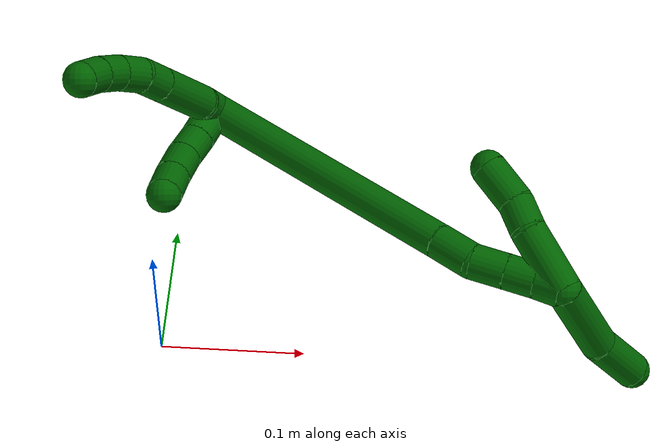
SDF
<sdf version="1.7">
 <world name="default">
  <model name="6">
   <static>0</static>
   <link name="6">
    <collision name="collision-cylinder-e_1_2_8">
     <pose>-0.004646 -0.009164 0.002449 1.3097 -0.455456 -0.352225</pose>
     <geometry><cylinder><radius>0.0125</radius><length>0.021125</length></cylinder></geometry>
     <surface>
      <friction><ode><mu>1.16</mu><mu2>1.16</mu2><slip1>0</slip1><slip2>0</slip2></ode></friction>
      <contact><ode><kp>1e+06</kp><kd>1</kd><max_vel>0</max_vel><min_depth>0.001</min_depth></ode></contact>
     </surface>
    </collision>
    <visual name="visual-cylinder-e_1_2_8">
     <pose>-0.004646 -0.009164 0.002449 1.3097 -0.455456 -0.352225</pose>
     <geometry><cylinder><radius>0.0125</radius><length>0.021125</length></cylinder></geometry>
     <material><ambient>0 0.392157 0.003922 1</ambient></material>
    </visual>
    <collision name="collision-cylinder-e_2_8_9">
     <pose>-0.024423 -0.035282 0.011317 1.20882 -0.695492 -0.490594</pose>
     <geometry><cylinder><radius>0.0125</radius><length>0.047227</length></cylinder></geometry>
     <surface>
      <friction><ode><mu>1.16</mu><mu2>1.16</mu2><slip1>0</slip1><slip2>0</slip2></ode></friction>
      <contact><ode><kp>1e+06</kp><kd>1</kd><max_vel>0</max_vel><min_depth>0.001</min_depth></ode></contact>
     </surface>
    </collision>
    <visual name="visual-cylinder-e_2_8_9">
     <pose>-0.024423 -0.035282 0.011317 1.20882 -0.695492 -0.490594</pose>
     <geometry><cylinder><radius>0.0125</radius><length>0.047227</length></cylinder></geometry>
     <material><ambient>0 0.392157 0.003922 1</ambient></material>
    </visual>
    <collision name="collision-cylinder-e_3_9_10">
     <pose>-0.046122 -0.059658 0.020514 1.21275 -0.692141 -0.490103</pose>
     <geometry><cylinder><radius>0.0125</radius><length>0.020586</length></cylinder></geometry>
     <surface>
      <friction><ode><mu>1.16</mu><mu2>1.16</mu2><slip1>0</slip1><slip2>0</slip2></ode></friction>
      <contact><ode><kp>1e+06</kp><kd>1</kd><max_vel>0</max_vel><min_depth>0.001</min_depth></ode></contact>
     </surface>
    </collision>
    <visual name="visual-cylinder-e_3_9_10">
     <pose>-0.046122 -0.059658 0.020514 1.21275 -0.692141 -0.490103</pose>
     <geometry><cylinder><radius>0.0125</radius><length>0.020586</length></cylinder></geometry>
     <material><ambient>0 0.392157 0.003922 1</ambient></material>
    </visual>
    <collision name="collision-cylinder-e_4_10_11">
     <pose>-0.060616 -0.073522 0.023936 1.47105 -0.88582 -0.810912</pose>
     <geometry><cylinder><radius>0.0125</radius><length>0.020468</length></cylinder></geometry>
     <surface>
      <friction><ode><mu>1.16</mu><mu2>1.16</mu2><slip1>0</slip1><slip2>0</slip2></ode></friction>
      <contact><ode><kp>1e+06</kp><kd>1</kd><max_vel>0</max_vel><min_depth>0.001</min_depth></ode></contact>
     </surface>
    </collision>
    <visual name="visual-cylinder-e_4_10_11">
     <pose>-0.060616 -0.073522 0.023936 1.47105 -0.88582 -0.810912</pose>
     <geometry><cylinder><radius>0.0125</radius><length>0.020468</length></cylinder></geometry>
     <material><ambient>0 0.392157 0.003922 1</ambient></material>
    </visual>
    <collision name="collision-cylinder-e_5_11_12">
     <pose>-0.075186 -0.087513 0.023832 1.66962 -0.719374 -0.787038</pose>
     <geometry><cylinder><radius>0.0125</radius><length>0.020167</length></cylinder></geometry>
     <surface>
      <friction><ode><mu>1.16</mu><mu2>1.16</mu2><slip1>0</slip1><slip2>0</slip2></ode></friction>
      <contact><ode><kp>1e+06</kp><kd>1</kd><max_vel>0</max_vel><min_depth>0.001</min_depth></ode></contact>
     </surface>
    </collision>
    <visual name="visual-cylinder-e_5_11_12">
     <pose>-0.075186 -0.087513 0.023832 1.66962 -0.719374 -0.787038</pose>
     <geometry><cylinder><radius>0.0125</radius><length>0.020167</length></cylinder></geometry>
     <material><ambient>0 0.392157 0.003922 1</ambient></material>
    </visual>
    <collision name="collision-cylinder-e_6_12_6">
     <pose>-0.087427 -0.103383 0.021151 1.79899 -0.579979 -0.718668</pose>
     <geometry><cylinder><radius>0.0125</radius><length>0.020428</length></cylinder></geometry>
     <surface>
      <friction><ode><mu>1.16</mu><mu2>1.16</mu2><slip1>0</slip1><slip2>0</slip2></ode></friction>
      <contact><ode><kp>1e+06</kp><kd>1</kd><max_vel>0</max_vel><min_depth>0.001</min_depth></ode></contact>
     </surface>
    </collision>
    <visual name="visual-cylinder-e_6_12_6">
     <pose>-0.087427 -0.103383 0.021151 1.79899 -0.579979 -0.718668</pose>
     <geometry><cylinder><radius>0.0125</radius><length>0.020428</length></cylinder></geometry>
     <material><ambient>0 0.392157 0.003922 1</ambient></material>
    </visual>
    <collision name="collision-cylinder-e_1_2_13">
     <pose>-0.006688 -0.007881 -0.00986 2.46728 -0.487276 -1.23365</pose>
     <geometry><cylinder><radius>0.0125</radius><length>0.028569</length></cylinder></geometry>
     <surface>
      <friction><ode><mu>1.16</mu><mu2>1.16</mu2><slip1>0</slip1><slip2>0</slip2></ode></friction>
      <contact><ode><kp>1e+06</kp><kd>1</kd><max_vel>0</max_vel><min_depth>0.001</min_depth></ode></contact>
     </surface>
    </collision>
    <visual name="visual-cylinder-e_1_2_13">
     <pose>-0.006688 -0.007881 -0.00986 2.46728 -0.487276 -1.23365</pose>
     <geometry><cylinder><radius>0.0125</radius><length>0.028569</length></cylinder></geometry>
     <material><ambient>0 0.392157 0.003922 1</ambient></material>
    </visual>
    <collision name="collision-cylinder-e_2_13_14">
     <pose>-0.018489 -0.021501 -0.026165 2.41411 -0.534746 -1.2475</pose>
     <geometry><cylinder><radius>0.0125</radius><length>0.020061</length></cylinder></geometry>
     <surface>
      <friction><ode><mu>1.16</mu><mu2>1.16</mu2><slip1>0</slip1><slip2>0</slip2></ode></friction>
      <contact><ode><kp>1e+06</kp><kd>1</kd><max_vel>0</max_vel><min_depth>0.001</min_depth></ode></contact>
     </surface>
    </collision>
    <visual name="visual-cylinder-e_2_13_14">
     <pose>-0.018489 -0.021501 -0.026165 2.41411 -0.534746 -1.2475</pose>
     <geometry><cylinder><radius>0.0125</radius><length>0.020061</length></cylinder></geometry>
     <material><ambient>0 0.392157 0.003922 1</ambient></material>
    </visual>
    <collision name="collision-cylinder-e_3_14_15">
     <pose>-0.02794 -0.037752 -0.039515 2.15192 -0.332236 -0.602501</pose>
     <geometry><cylinder><radius>0.0125</radius><length>0.026609</length></cylinder></geometry>
     <surface>
      <friction><ode><mu>1.16</mu><mu2>1.16</mu2><slip1>0</slip1><slip2>0</slip2></ode></friction>
      <contact><ode><kp>1e+06</kp><kd>1</kd><max_vel>0</max_vel><min_depth>0.001</min_depth></ode></contact>
     </surface>
    </collision>
    <visual name="visual-cylinder-e_3_14_15">
     <pose>-0.02794 -0.037752 -0.039515 2.15192 -0.332236 -0.602501</pose>
     <geometry><cylinder><radius>0.0125</radius><length>0.026609</length></cylinder></geometry>
     <material><ambient>0 0.392157 0.003922 1</ambient></material>
    </visual>
    <collision name="collision-cylinder-e_4_15_5">
     <pose>-0.035434 -0.058479 -0.052663 2.11951 -0.257633 -0.454056</pose>
     <geometry><cylinder><radius>0.0125</radius><length>0.02476</length></cylinder></geometry>
     <surface>
      <friction><ode><mu>1.16</mu><mu2>1.16</mu2><slip1>0</slip1><slip2>0</slip2></ode></friction>
      <contact><ode><kp>1e+06</kp><kd>1</kd><max_vel>0</max_vel><min_depth>0.001</min_depth></ode></contact>
     </surface>
    </collision>
    <visual name="visual-cylinder-e_4_15_5">
     <pose>-0.035434 -0.058479 -0.052663 2.11951 -0.257633 -0.454056</pose>
     <geometry><cylinder><radius>0.0125</radius><length>0.02476</length></cylinder></geometry>
     <material><ambient>0 0.392157 0.003922 1</ambient></material>
    </visual>
    <collision name="collision-cylinder-e_1_2_16">
     <pose>0.072685 -0.055552 -0.046683 2.26966 0.786242 1.45474</pose>
     <geometry><cylinder><radius>0.0125</radius><length>0.205412</length></cylinder></geometry>
     <surface>
      <friction><ode><mu>1.16</mu><mu2>1.16</mu2><slip1>0</slip1><slip2>0</slip2></ode></friction>
      <contact><ode><kp>1e+06</kp><kd>1</kd><max_vel>0</max_vel><min_depth>0.001</min_depth></ode></contact>
     </surface>
    </collision>
    <visual name="visual-cylinder-e_1_2_16">
     <pose>0.072685 -0.055552 -0.046683 2.26966 0.786242 1.45474</pose>
     <geometry><cylinder><radius>0.0125</radius><length>0.205412</length></cylinder></geometry>
     <material><ambient>0 0.392157 0.003922 1</ambient></material>
    </visual>
    <collision name="collision-cylinder-e_2_16_17">
     <pose>0.155687 -0.118019 -0.10014 2.34592 0.817277 1.60072</pose>
     <geometry><cylinder><radius>0.0125</radius><length>0.028293</length></cylinder></geometry>
     <surface>
      <friction><ode><mu>1.16</mu><mu2>1.16</mu2><slip1>0</slip1><slip2>0</slip2></ode></friction>
      <contact><ode><kp>1e+06</kp><kd>1</kd><max_vel>0</max_vel><min_depth>0.001</min_depth></ode></contact>
     </surface>
    </collision>
    <visual name="visual-cylinder-e_2_16_17">
     <pose>0.155687 -0.118019 -0.10014 2.34592 0.817277 1.60072</pose>
     <geometry><cylinder><radius>0.0125</radius><length>0.028293</length></cylinder></geometry>
     <material><ambient>0 0.392157 0.003922 1</ambient></material>
    </visual>
    <collision name="collision-cylinder-e_3_17_18">
     <pose>0.177068 -0.128293 -0.110469 2.3844 1.15441 2.04485</pose>
     <geometry><cylinder><radius>0.0125</radius><length>0.024194</length></cylinder></geometry>
     <surface>
      <friction><ode><mu>1.16</mu><mu2>1.16</mu2><slip1>0</slip1><slip2>0</slip2></ode></friction>
      <contact><ode><kp>1e+06</kp><kd>1</kd><max_vel>0</max_vel><min_depth>0.001</min_depth></ode></contact>
     </surface>
    </collision>
    <visual name="visual-cylinder-e_3_17_18">
     <pose>0.177068 -0.128293 -0.110469 2.3844 1.15441 2.04485</pose>
     <geometry><cylinder><radius>0.0125</radius><length>0.024194</length></cylinder></geometry>
     <material><ambient>0 0.392157 0.003922 1</ambient></material>
    </visual>
    <collision name="collision-cylinder-e_4_18_19">
     <pose>0.198204 -0.134765 -0.117309 2.38318 1.1487 2.03769</pose>
     <geometry><cylinder><radius>0.0125</radius><length>0.022085</length></cylinder></geometry>
     <surface>
      <friction><ode><mu>1.16</mu><mu2>1.16</mu2><slip1>0</slip1><slip2>0</slip2></ode></friction>
      <contact><ode><kp>1e+06</kp><kd>1</kd><max_vel>0</max_vel><min_depth>0.001</min_depth></ode></contact>
     </surface>
    </collision>
    <visual name="visual-cylinder-e_4_18_19">
     <pose>0.198204 -0.134765 -0.117309 2.38318 1.1487 2.03769</pose>
     <geometry><cylinder><radius>0.0125</radius><length>0.022085</length></cylinder></geometry>
     <material><ambient>0 0.392157 0.003922 1</ambient></material>
    </visual>
    <collision name="collision-cylinder-e_5_19_1">
     <pose>0.216417 -0.142768 -0.123754 2.14468 0.949718 1.51374</pose>
     <geometry><cylinder><radius>0.0125</radius><length>0.020017</length></cylinder></geometry>
     <surface>
      <friction><ode><mu>1.16</mu><mu2>1.16</mu2><slip1>0</slip1><slip2>0</slip2></ode></friction>
      <contact><ode><kp>1e+06</kp><kd>1</kd><max_vel>0</max_vel><min_depth>0.001</min_depth></ode></contact>
     </surface>
    </collision>
    <visual name="visual-cylinder-e_5_19_1">
     <pose>0.216417 -0.142768 -0.123754 2.14468 0.949718 1.51374</pose>
     <geometry><cylinder><radius>0.0125</radius><length>0.020017</length></cylinder></geometry>
     <material><ambient>0 0.392157 0.003922 1</ambient></material>
    </visual>
    <collision name="collision-cylinder-e_1_1_20">
     <pose>0.213612 -0.142184 -0.106795 -0.265637 -0.483299 0.065834</pose>
     <geometry><cylinder><radius>0.0125</radius><length>0.047101</length></cylinder></geometry>
     <surface>
      <friction><ode><mu>1.16</mu><mu2>1.16</mu2><slip1>0</slip1><slip2>0</slip2></ode></friction>
      <contact><ode><kp>1e+06</kp><kd>1</kd><max_vel>0</max_vel><min_depth>0.001</min_depth></ode></contact>
     </surface>
    </collision>
    <visual name="visual-cylinder-e_1_1_20">
     <pose>0.213612 -0.142184 -0.106795 -0.265637 -0.483299 0.065834</pose>
     <geometry><cylinder><radius>0.0125</radius><length>0.047101</length></cylinder></geometry>
     <material><ambient>0 0.392157 0.003922 1</ambient></material>
    </visual>
    <collision name="collision-cylinder-e_2_20_21">
     <pose>0.199396 -0.132027 -0.077352 -0.465562 -0.303953 0.072589</pose>
     <geometry><cylinder><radius>0.0125</radius><length>0.021865</length></cylinder></geometry>
     <surface>
      <friction><ode><mu>1.16</mu><mu2>1.16</mu2><slip1>0</slip1><slip2>0</slip2></ode></friction>
      <contact><ode><kp>1e+06</kp><kd>1</kd><max_vel>0</max_vel><min_depth>0.001</min_depth></ode></contact>
     </surface>
    </collision>
    <visual name="visual-cylinder-e_2_20_21">
     <pose>0.199396 -0.132027 -0.077352 -0.465562 -0.303953 0.072589</pose>
     <geometry><cylinder><radius>0.0125</radius><length>0.021865</length></cylinder></geometry>
     <material><ambient>0 0.392157 0.003922 1</ambient></material>
    </visual>
    <collision name="collision-cylinder-e_3_21_4">
     <pose>0.187796 -0.121629 -0.056251 -0.451708 -0.566521 0.13357</pose>
     <geometry><cylinder><radius>0.0125</radius><length>0.031035</length></cylinder></geometry>
     <surface>
      <friction><ode><mu>1.16</mu><mu2>1.16</mu2><slip1>0</slip1><slip2>0</slip2></ode></friction>
      <contact><ode><kp>1e+06</kp><kd>1</kd><max_vel>0</max_vel><min_depth>0.001</min_depth></ode></contact>
     </surface>
    </collision>
    <visual name="visual-cylinder-e_3_21_4">
     <pose>0.187796 -0.121629 -0.056251 -0.451708 -0.566521 0.13357</pose>
     <geometry><cylinder><radius>0.0125</radius><length>0.031035</length></cylinder></geometry>
     <material><ambient>0 0.392157 0.003922 1</ambient></material>
    </visual>
    <collision name="collision-cylinder-e_1_1_22">
     <pose>0.239041 -0.130781 -0.146045 -2.41861 0.516423 -1.21944</pose>
     <geometry><cylinder><radius>0.0125</radius><length>0.058672</length></cylinder></geometry>
     <surface>
      <friction><ode><mu>1.16</mu><mu2>1.16</mu2><slip1>0</slip1><slip2>0</slip2></ode></friction>
      <contact><ode><kp>1e+06</kp><kd>1</kd><max_vel>0</max_vel><min_depth>0.001</min_depth></ode></contact>
     </surface>
    </collision>
    <visual name="visual-cylinder-e_1_1_22">
     <pose>0.239041 -0.130781 -0.146045 -2.41861 0.516423 -1.21944</pose>
     <geometry><cylinder><radius>0.0125</radius><length>0.058672</length></cylinder></geometry>
     <material><ambient>0 0.392157 0.003922 1</ambient></material>
    </visual>
    <collision name="collision-cylinder-e_2_22_3">
     <pose>0.267191 -0.102301 -0.175455 -2.29595 0.722498 -1.39696</pose>
     <geometry><cylinder><radius>0.0125</radius><length>0.041328</length></cylinder></geometry>
     <surface>
      <friction><ode><mu>1.16</mu><mu2>1.16</mu2><slip1>0</slip1><slip2>0</slip2></ode></friction>
      <contact><ode><kp>1e+06</kp><kd>1</kd><max_vel>0</max_vel><min_depth>0.001</min_depth></ode></contact>
     </surface>
    </collision>
    <visual name="visual-cylinder-e_2_22_3">
     <pose>0.267191 -0.102301 -0.175455 -2.29595 0.722498 -1.39696</pose>
     <geometry><cylinder><radius>0.0125</radius><length>0.041328</length></cylinder></geometry>
     <material><ambient>0 0.392157 0.003922 1</ambient></material>
    </visual>
    <collision name="collision-sphere-3">
     <pose>0.280855 -0.0907 -0.185736 0 -0 0</pose>
     <geometry><sphere><radius>0.0125</radius></sphere></geometry>
     <surface>
      <friction><ode><mu>1.16</mu><mu2>1.16</mu2><slip1>0</slip1><slip2>0</slip2></ode></friction>
      <contact><ode><kp>1e+06</kp><kd>1</kd><max_vel>0</max_vel><min_depth>0.001</min_depth></ode></contact>
     </surface>
    </collision>
    <visual name="visual-sphere-3">
     <pose>0.280855 -0.0907 -0.185736 0 -0 0</pose>
     <geometry><sphere><radius>0.0125</radius></sphere></geometry>
     <material><ambient>0 0.392157 0.003922 1</ambient></material>
    </visual>
    <collision name="collision-sphere-22">
     <pose>0.253526 -0.113902 -0.165173 0 -0 0</pose>
     <geometry><sphere><radius>0.0125</radius></sphere></geometry>
     <surface>
      <friction><ode><mu>1.16</mu><mu2>1.16</mu2><slip1>0</slip1><slip2>0</slip2></ode></friction>
      <contact><ode><kp>1e+06</kp><kd>1</kd><max_vel>0</max_vel><min_depth>0.001</min_depth></ode></contact>
     </surface>
    </collision>
    <visual name="visual-sphere-22">
     <pose>0.253526 -0.113902 -0.165173 0 -0 0</pose>
     <geometry><sphere><radius>0.0125</radius></sphere></geometry>
     <material><ambient>0 0.392157 0.003922 1</ambient></material>
    </visual>
    <collision name="collision-sphere-4">
     <pose>0.179468 -0.115914 -0.044471 0 -0 0</pose>
     <geometry><sphere><radius>0.0125</radius></sphere></geometry>
     <surface>
      <friction><ode><mu>1.16</mu><mu2>1.16</mu2><slip1>0</slip1><slip2>0</slip2></ode></friction>
      <contact><ode><kp>1e+06</kp><kd>1</kd><max_vel>0</max_vel><min_depth>0.001</min_depth></ode></contact>
     </surface>
    </collision>
    <visual name="visual-sphere-4">
     <pose>0.179468 -0.115914 -0.044471 0 -0 0</pose>
     <geometry><sphere><radius>0.0125</radius></sphere></geometry>
     <material><ambient>0 0.392157 0.003922 1</ambient></material>
    </visual>
    <collision name="collision-sphere-21">
     <pose>0.196124 -0.127344 -0.068031 0 -0 0</pose>
     <geometry><sphere><radius>0.0125</radius></sphere></geometry>
     <surface>
      <friction><ode><mu>1.16</mu><mu2>1.16</mu2><slip1>0</slip1><slip2>0</slip2></ode></friction>
      <contact><ode><kp>1e+06</kp><kd>1</kd><max_vel>0</max_vel><min_depth>0.001</min_depth></ode></contact>
     </surface>
    </collision>
    <visual name="visual-sphere-21">
     <pose>0.196124 -0.127344 -0.068031 0 -0 0</pose>
     <geometry><sphere><radius>0.0125</radius></sphere></geometry>
     <material><ambient>0 0.392157 0.003922 1</ambient></material>
    </visual>
    <collision name="collision-sphere-20">
     <pose>0.202668 -0.13671 -0.086673 0 -0 0</pose>
     <geometry><sphere><radius>0.0125</radius></sphere></geometry>
     <surface>
      <friction><ode><mu>1.16</mu><mu2>1.16</mu2><slip1>0</slip1><slip2>0</slip2></ode></friction>
      <contact><ode><kp>1e+06</kp><kd>1</kd><max_vel>0</max_vel><min_depth>0.001</min_depth></ode></contact>
     </surface>
    </collision>
    <visual name="visual-sphere-20">
     <pose>0.202668 -0.13671 -0.086673 0 -0 0</pose>
     <geometry><sphere><radius>0.0125</radius></sphere></geometry>
     <material><ambient>0 0.392157 0.003922 1</ambient></material>
    </visual>
    <collision name="collision-sphere-12">
     <pose>-0.08183 -0.095061 0.023083 0 -0 0</pose>
     <geometry><sphere><radius>0.0125</radius></sphere></geometry>
     <surface>
      <friction><ode><mu>1.16</mu><mu2>1.16</mu2><slip1>0</slip1><slip2>0</slip2></ode></friction>
      <contact><ode><kp>1e+06</kp><kd>1</kd><max_vel>0</max_vel><min_depth>0.001</min_depth></ode></contact>
     </surface>
    </collision>
    <visual name="visual-sphere-12">
     <pose>-0.08183 -0.095061 0.023083 0 -0 0</pose>
     <geometry><sphere><radius>0.0125</radius></sphere></geometry>
     <material><ambient>0 0.392157 0.003922 1</ambient></material>
    </visual>
    <collision name="collision-sphere-11">
     <pose>-0.068542 -0.079965 0.02458 0 -0 0</pose>
     <geometry><sphere><radius>0.0125</radius></sphere></geometry>
     <surface>
      <friction><ode><mu>1.16</mu><mu2>1.16</mu2><slip1>0</slip1><slip2>0</slip2></ode></friction>
      <contact><ode><kp>1e+06</kp><kd>1</kd><max_vel>0</max_vel><min_depth>0.001</min_depth></ode></contact>
     </surface>
    </collision>
    <visual name="visual-sphere-11">
     <pose>-0.068542 -0.079965 0.02458 0 -0 0</pose>
     <geometry><sphere><radius>0.0125</radius></sphere></geometry>
     <material><ambient>0 0.392157 0.003922 1</ambient></material>
    </visual>
    <collision name="collision-sphere-10">
     <pose>-0.052691 -0.06708 0.023291 0 -0 0</pose>
     <geometry><sphere><radius>0.0125</radius></sphere></geometry>
     <surface>
      <friction><ode><mu>1.16</mu><mu2>1.16</mu2><slip1>0</slip1><slip2>0</slip2></ode></friction>
      <contact><ode><kp>1e+06</kp><kd>1</kd><max_vel>0</max_vel><min_depth>0.001</min_depth></ode></contact>
     </surface>
    </collision>
    <visual name="visual-sphere-10">
     <pose>-0.052691 -0.06708 0.023291 0 -0 0</pose>
     <geometry><sphere><radius>0.0125</radius></sphere></geometry>
     <material><ambient>0 0.392157 0.003922 1</ambient></material>
    </visual>
    <collision name="collision-sphere-9">
     <pose>-0.039553 -0.052236 0.017737 0 -0 0</pose>
     <geometry><sphere><radius>0.0125</radius></sphere></geometry>
     <surface>
      <friction><ode><mu>1.16</mu><mu2>1.16</mu2><slip1>0</slip1><slip2>0</slip2></ode></friction>
      <contact><ode><kp>1e+06</kp><kd>1</kd><max_vel>0</max_vel><min_depth>0.001</min_depth></ode></contact>
     </surface>
    </collision>
    <visual name="visual-sphere-9">
     <pose>-0.039553 -0.052236 0.017737 0 -0 0</pose>
     <geometry><sphere><radius>0.0125</radius></sphere></geometry>
     <material><ambient>0 0.392157 0.003922 1</ambient></material>
    </visual>
    <collision name="collision-sphere-2">
     <geometry><sphere><radius>0.0125</radius></sphere></geometry>
     <surface>
      <friction><ode><mu>1.16</mu><mu2>1.16</mu2><slip1>0</slip1><slip2>0</slip2></ode></friction>
      <contact><ode><kp>1e+06</kp><kd>1</kd><max_vel>0</max_vel><min_depth>0.001</min_depth></ode></contact>
     </surface>
    </collision>
    <visual name="visual-sphere-2">
     <geometry><sphere><radius>0.0125</radius></sphere></geometry>
     <material><ambient>0 0.392157 0.003922 1</ambient></material>
    </visual>
    <collision name="collision-sphere-19">
     <pose>0.208277 -0.137877 -0.120593 0 -0 0</pose>
     <geometry><sphere><radius>0.0125</radius></sphere></geometry>
     <surface>
      <friction><ode><mu>1.16</mu><mu2>1.16</mu2><slip1>0</slip1><slip2>0</slip2></ode></friction>
      <contact><ode><kp>1e+06</kp><kd>1</kd><max_vel>0</max_vel><min_depth>0.001</min_depth></ode></contact>
     </surface>
    </collision>
    <visual name="visual-sphere-19">
     <pose>0.208277 -0.137877 -0.120593 0 -0 0</pose>
     <geometry><sphere><radius>0.0125</radius></sphere></geometry>
     <material><ambient>0 0.392157 0.003922 1</ambient></material>
    </visual>
    <collision name="collision-sphere-8">
     <pose>-0.009292 -0.018328 0.004897 0 -0 0</pose>
     <geometry><sphere><radius>0.0125</radius></sphere></geometry>
     <surface>
      <friction><ode><mu>1.16</mu><mu2>1.16</mu2><slip1>0</slip1><slip2>0</slip2></ode></friction>
      <contact><ode><kp>1e+06</kp><kd>1</kd><max_vel>0</max_vel><min_depth>0.001</min_depth></ode></contact>
     </surface>
    </collision>
    <visual name="visual-sphere-8">
     <pose>-0.009292 -0.018328 0.004897 0 -0 0</pose>
     <geometry><sphere><radius>0.0125</radius></sphere></geometry>
     <material><ambient>0 0.392157 0.003922 1</ambient></material>
    </visual>
    <collision name="collision-sphere-6">
     <pose>-0.093025 -0.111705 0.019218 0 -0 0</pose>
     <geometry><sphere><radius>0.0125</radius></sphere></geometry>
     <surface>
      <friction><ode><mu>1.16</mu><mu2>1.16</mu2><slip1>0</slip1><slip2>0</slip2></ode></friction>
      <contact><ode><kp>1e+06</kp><kd>1</kd><max_vel>0</max_vel><min_depth>0.001</min_depth></ode></contact>
     </surface>
    </collision>
    <visual name="visual-sphere-6">
     <pose>-0.093025 -0.111705 0.019218 0 -0 0</pose>
     <geometry><sphere><radius>0.0125</radius></sphere></geometry>
     <material><ambient>0 0.392157 0.003922 1</ambient></material>
    </visual>
    <collision name="collision-sphere-13">
     <pose>-0.013377 -0.015761 -0.019719 0 -0 0</pose>
     <geometry><sphere><radius>0.0125</radius></sphere></geometry>
     <surface>
      <friction><ode><mu>1.16</mu><mu2>1.16</mu2><slip1>0</slip1><slip2>0</slip2></ode></friction>
      <contact><ode><kp>1e+06</kp><kd>1</kd><max_vel>0</max_vel><min_depth>0.001</min_depth></ode></contact>
     </surface>
    </collision>
    <visual name="visual-sphere-13">
     <pose>-0.013377 -0.015761 -0.019719 0 -0 0</pose>
     <geometry><sphere><radius>0.0125</radius></sphere></geometry>
     <material><ambient>0 0.392157 0.003922 1</ambient></material>
    </visual>
    <collision name="collision-sphere-14">
     <pose>-0.0236 -0.02724 -0.03261 0 -0 0</pose>
     <geometry><sphere><radius>0.0125</radius></sphere></geometry>
     <surface>
      <friction><ode><mu>1.16</mu><mu2>1.16</mu2><slip1>0</slip1><slip2>0</slip2></ode></friction>
      <contact><ode><kp>1e+06</kp><kd>1</kd><max_vel>0</max_vel><min_depth>0.001</min_depth></ode></contact>
     </surface>
    </collision>
    <visual name="visual-sphere-14">
     <pose>-0.0236 -0.02724 -0.03261 0 -0 0</pose>
     <geometry><sphere><radius>0.0125</radius></sphere></geometry>
     <material><ambient>0 0.392157 0.003922 1</ambient></material>
    </visual>
    <collision name="collision-sphere-15">
     <pose>-0.032279 -0.048264 -0.046419 0 -0 0</pose>
     <geometry><sphere><radius>0.0125</radius></sphere></geometry>
     <surface>
      <friction><ode><mu>1.16</mu><mu2>1.16</mu2><slip1>0</slip1><slip2>0</slip2></ode></friction>
      <contact><ode><kp>1e+06</kp><kd>1</kd><max_vel>0</max_vel><min_depth>0.001</min_depth></ode></contact>
     </surface>
    </collision>
    <visual name="visual-sphere-15">
     <pose>-0.032279 -0.048264 -0.046419 0 -0 0</pose>
     <geometry><sphere><radius>0.0125</radius></sphere></geometry>
     <material><ambient>0 0.392157 0.003922 1</ambient></material>
    </visual>
    <collision name="collision-sphere-5">
     <pose>-0.038588 -0.068693 -0.058907 0 -0 0</pose>
     <geometry><sphere><radius>0.0125</radius></sphere></geometry>
     <surface>
      <friction><ode><mu>1.16</mu><mu2>1.16</mu2><slip1>0</slip1><slip2>0</slip2></ode></friction>
      <contact><ode><kp>1e+06</kp><kd>1</kd><max_vel>0</max_vel><min_depth>0.001</min_depth></ode></contact>
     </surface>
    </collision>
    <visual name="visual-sphere-5">
     <pose>-0.038588 -0.068693 -0.058907 0 -0 0</pose>
     <geometry><sphere><radius>0.0125</radius></sphere></geometry>
     <material><ambient>0 0.392157 0.003922 1</ambient></material>
    </visual>
    <collision name="collision-sphere-16">
     <pose>0.145371 -0.111104 -0.093366 0 -0 0</pose>
     <geometry><sphere><radius>0.0125</radius></sphere></geometry>
     <surface>
      <friction><ode><mu>1.16</mu><mu2>1.16</mu2><slip1>0</slip1><slip2>0</slip2></ode></friction>
      <contact><ode><kp>1e+06</kp><kd>1</kd><max_vel>0</max_vel><min_depth>0.001</min_depth></ode></contact>
     </surface>
    </collision>
    <visual name="visual-sphere-16">
     <pose>0.145371 -0.111104 -0.093366 0 -0 0</pose>
     <geometry><sphere><radius>0.0125</radius></sphere></geometry>
     <material><ambient>0 0.392157 0.003922 1</ambient></material>
    </visual>
    <collision name="collision-sphere-17">
     <pose>0.166004 -0.124933 -0.106913 0 -0 0</pose>
     <geometry><sphere><radius>0.0125</radius></sphere></geometry>
     <surface>
      <friction><ode><mu>1.16</mu><mu2>1.16</mu2><slip1>0</slip1><slip2>0</slip2></ode></friction>
      <contact><ode><kp>1e+06</kp><kd>1</kd><max_vel>0</max_vel><min_depth>0.001</min_depth></ode></contact>
     </surface>
    </collision>
    <visual name="visual-sphere-17">
     <pose>0.166004 -0.124933 -0.106913 0 -0 0</pose>
     <geometry><sphere><radius>0.0125</radius></sphere></geometry>
     <material><ambient>0 0.392157 0.003922 1</ambient></material>
    </visual>
    <collision name="collision-sphere-18">
     <pose>0.188131 -0.131654 -0.114025 0 -0 0</pose>
     <geometry><sphere><radius>0.0125</radius></sphere></geometry>
     <surface>
      <friction><ode><mu>1.16</mu><mu2>1.16</mu2><slip1>0</slip1><slip2>0</slip2></ode></friction>
      <contact><ode><kp>1e+06</kp><kd>1</kd><max_vel>0</max_vel><min_depth>0.001</min_depth></ode></contact>
     </surface>
    </collision>
    <visual name="visual-sphere-18">
     <pose>0.188131 -0.131654 -0.114025 0 -0 0</pose>
     <geometry><sphere><radius>0.0125</radius></sphere></geometry>
     <material><ambient>0 0.392157 0.003922 1</ambient></material>
    </visual>
    <collision name="collision-sphere-1">
     <pose>0.224556 -0.147659 -0.126916 0 -0 0</pose>
     <geometry><sphere><radius>0.0125</radius></sphere></geometry>
     <surface>
      <friction><ode><mu>1.16</mu><mu2>1.16</mu2><slip1>0</slip1><slip2>0</slip2></ode></friction>
      <contact><ode><kp>1e+06</kp><kd>1</kd><max_vel>0</max_vel><min_depth>0.001</min_depth></ode></contact>
     </surface>
    </collision>
    <visual name="visual-sphere-1">
     <pose>0.224556 -0.147659 -0.126916 0 -0 0</pose>
     <geometry><sphere><radius>0.0125</radius></sphere></geometry>
     <material><ambient>0 0.392157 0.003922 1</ambient></material>
    </visual>
    <inertial>
     <pose>0.091625 -0.080701 -0.060268 0 -0 0</pose>
     <mass>0.75</mass>
     <inertia>
      <ixx>0.000589</ixx>
      <ixy>0</ixy>
      <ixz>0</ixz>
      <iyy>0.000837</iyy>
      <iyz>0</iyz>
      <izz>-0.000129</izz>
     </inertia>
    </inertial>
   </link>
   <pose>0.02498 0.153618 0.077285 -0.880769 0.062699 0.142019</pose>
  </model>
 </world>
</sdf>
